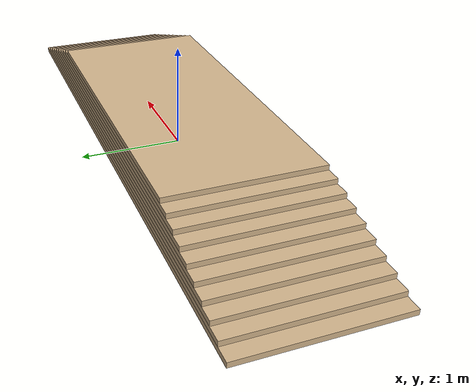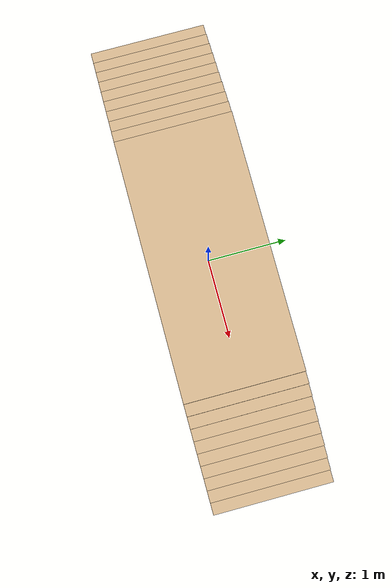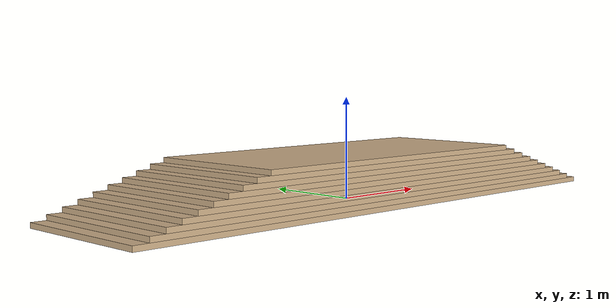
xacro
<robot name="stairs" xmlns:xacro="http://wiki.ros.org/xacro">
    <!-- calculate inertial -->
    <xacro:include filename="inertial.xacro" />
    <!-- main  -->
    <xacro:include filename="stairs_template.xacro" />

    <!--
        run the following cmd to generate urdf file
        rosrun xacro xacro filename.xacro>filename_new.urdf
    -->
</robot>

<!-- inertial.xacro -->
<robot name="base" xmlns:xacro="http://wiki.ros.org/xacro">
    <!-- Xacro for inertia matrix -->
    <xacro:macro name="sphere_inertial_matrix" params="m r">
        <inertial>
            <origin xyz="0 0 0" rpy="0 0 0" />
            <mass value="${m}" />
            <inertia ixx="${2*m*r*r/5}" ixy="0" ixz="0"
                    iyy="${2*m*r*r/5}" iyz="0"
                    izz="${2*m*r*r/5}" />
        </inertial>
    </xacro:macro>

    <xacro:macro name="cylinder_inertial_matrix" params="m r h">
        <inertial>
            <origin xyz="0 0 0" rpy="0 0 0" />
            <mass value="${m}" />
            <inertia ixx="${m*(3*r*r+h*h)/12}" ixy = "0" ixz = "0"
                    iyy="${m*(3*r*r+h*h)/12}" iyz = "0"
                    izz="${m*r*r/2}" />
        </inertial>
    </xacro:macro>

    <xacro:macro name="Box_inertial_matrix" params="m l w h">
       <inertial>
            <origin xyz="0 0 0" rpy="0 0 0" />
            <mass value="${m}" />
            <inertia ixx="${m*(h*h + l*l)/12}" ixy = "0" ixz = "0"
                    iyy="${m*(w*w + l*l)/12}" iyz= "0"
                    izz="${m*(w*w + h*h)/12}" />
       </inertial>
   </xacro:macro>
</robot>

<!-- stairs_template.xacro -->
<robot name="stairs" xmlns:xacro="http://wiki.ros.org/xacro">

    <material name="tan">
        <color rgba="0.824 0.706 0.549 1.0"/>
    </material>

    <!-- change value for different stairs -->
    <xacro:property name="stairs_length" value="6" />
    <xacro:property name="stairs_width" value="1.5" />
    <xacro:property name="stairs_height" value="0.05" />
    <xacro:property name="stairs_mass" value="10" />
    <xacro:property name="stairs_slope" value="3" />

    <xacro:macro name="link_func" params="order">
        <link name="link_${order}">
            <xacro:Box_inertial_matrix m="${stairs_mass}" l="${stairs_length-order*(2*stairs_slope*stairs_height)}" w="${stairs_width}" h="${stairs_height}" />
            <visual>
                <origin xyz="0 0 0" rpy="0 0 0" />
                <geometry>
                    <box size="${stairs_length-order*(2*stairs_slope*stairs_height)} ${stairs_width} ${stairs_height}" />
                </geometry>
                <material name="tan" />
            </visual>
            <collision>
                <origin xyz="0 0 0" rpy="0 0 0" />
                <geometry>
                    <box size="${stairs_length-order*(2*stairs_slope*stairs_height)} ${stairs_width} ${stairs_height}" />
                </geometry>
            </collision>
        </link>
        <joint name="joint_${order}" type="fixed">
            <parent link="link_${order-1}" />
            <child link="link_${order}" />
            <origin xyz="0 0 ${stairs_height}" />
        </joint>
    </xacro:macro>

    <!-- build stairs -->
    <link name="link_0">
        <xacro:Box_inertial_matrix m="${stairs_mass}" l="${stairs_length}" w="${stairs_width}" h="${stairs_height}" />
        <visual>
            <origin xyz="0 0 0" rpy="0 0 0" />
            <geometry>
                <box size="${stairs_length} ${stairs_width} ${stairs_height}" />
            </geometry>
            <material name="tan" />
        </visual>
        <collision>
            <origin xyz="0 0 0" rpy="0 0 0" />
            <geometry>
                <box size="${stairs_length} ${stairs_width} ${stairs_height}" />
            </geometry>
        </collision>
    </link>
    <xacro:link_func order="1" />
    <xacro:link_func order="2" />
    <xacro:link_func order="3" />
    <xacro:link_func order="4" />
    <xacro:link_func order="5" />
    <xacro:link_func order="6" />
    <xacro:link_func order="7" />
    <xacro:link_func order="8" />
    <xacro:link_func order="9" />

</robot>
